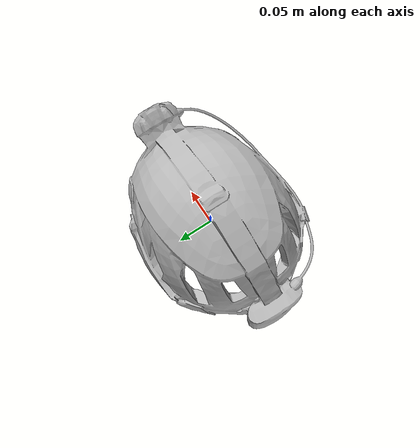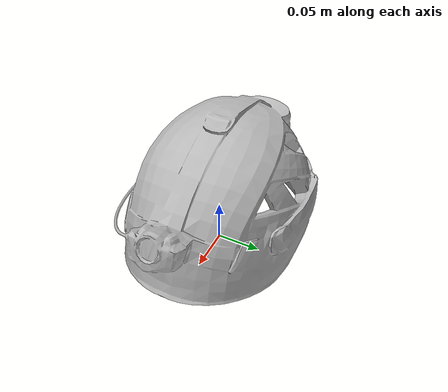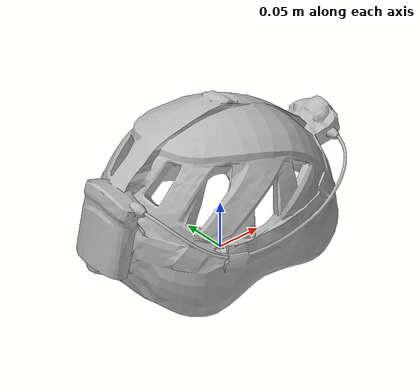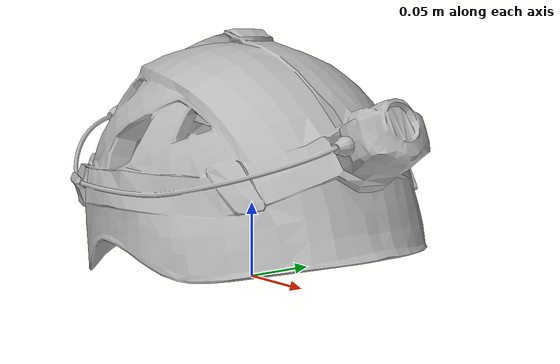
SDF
<?xml version="1.0"?>
<sdf version="1.6">
  <model name="Climbing Helmet With Light">
    <pose>0 0 0 0 0 0</pose>
    <static>true</static>
    <link name="link">
      <collision name="collision">
        <geometry>
          <mesh>
            <uri>model://Climbing Helmet With Light/meshes/CavingHelmet.dae</uri>
         </mesh>
        </geometry>
      </collision>
      <visual name="visual">
        <geometry>
          <mesh>
            <uri>model://Climbing Helmet With Light/meshes/CavingHelmet.dae</uri>
         </mesh>
        </geometry>
      </visual>
    </link>
  </model>
 </sdf>
